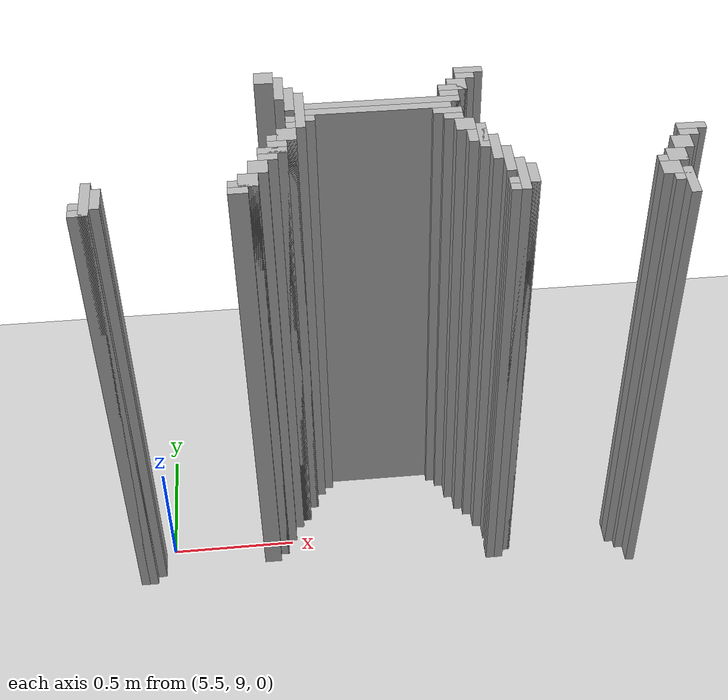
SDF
<sdf version="1.6">
 <world name="slam_world">
  <model name="ground_plane">
   <static>true</static>
   <link name="link">
    <collision name="collision">
     <geometry><plane><normal>0 0 1</normal><size>100 100</size></plane></geometry>
    </collision>
    <visual name="visual">
     <geometry><plane><normal>0 0 1</normal><size>100 100</size></plane></geometry>
     <material>
      <ambient>0.8 0.8 0.8 1</ambient>
      <diffuse>0.8 0.8 0.8 1</diffuse>
      <specular>0.8 0.8 0.8 1</specular>
     </material>
    </visual>
   </link>
  </model>
  <model name="wall_2583">
   <static>true</static>
   <pose>6.020881670533642 9.5707656612529 1.0 0 0 0</pose>
   <link name="link">
    <collision name="collision">
     <geometry><box><size>0.06960556844547564 0.06960556844547564 2.0</size></box></geometry>
    </collision>
    <visual name="visual">
     <geometry><box><size>0.06960556844547564 0.06960556844547564 2.0</size></box></geometry>
     <material><ambient>0.5 0.5 0.5 1</ambient><diffuse>0.7 0.7 0.7 1</diffuse></material>
    </visual>
   </link>
  </model>
  <model name="wall_2594">
   <static>true</static>
   <pose>6.073085846867749 9.501160092807424 1.0 0 0 0</pose>
   <link name="link">
    <collision name="collision">
     <geometry><box><size>0.03480278422273782 0.13921113689095127 2.0</size></box></geometry>
    </collision>
    <visual name="visual">
     <geometry><box><size>0.03480278422273782 0.13921113689095127 2.0</size></box></geometry>
     <material><ambient>0.5 0.5 0.5 1</ambient><diffuse>0.7 0.7 0.7 1</diffuse></material>
    </visual>
   </link>
  </model>
  <model name="wall_2595">
   <static>true</static>
   <pose>6.769141531322505 9.55336426914153 1.0 0 0 0</pose>
   <link name="link">
    <collision name="collision">
     <geometry><box><size>0.10440835266821345 0.03480278422273782 2.0</size></box></geometry>
    </collision>
    <visual name="visual">
     <geometry><box><size>0.10440835266821345 0.03480278422273782 2.0</size></box></geometry>
     <material><ambient>0.5 0.5 0.5 1</ambient><diffuse>0.7 0.7 0.7 1</diffuse></material>
    </visual>
   </link>
  </model>
  <model name="wall_2602">
   <static>true</static>
   <pose>6.751740139211137 9.518561484918793 1.0 0 0 0</pose>
   <link name="link">
    <collision name="collision">
     <geometry><box><size>0.06960556844547564 0.03480278422273782 2.0</size></box></geometry>
    </collision>
    <visual name="visual">
     <geometry><box><size>0.06960556844547564 0.03480278422273782 2.0</size></box></geometry>
     <material><ambient>0.5 0.5 0.5 1</ambient><diffuse>0.7 0.7 0.7 1</diffuse></material>
    </visual>
   </link>
  </model>
  <model name="wall_2609">
   <static>true</static>
   <pose>6.107888631090487 9.431554524361948 1.0 0 0 0</pose>
   <link name="link">
    <collision name="collision">
     <geometry><box><size>0.03480278422273782 0.13921113689095127 2.0</size></box></geometry>
    </collision>
    <visual name="visual">
     <geometry><box><size>0.03480278422273782 0.13921113689095127 2.0</size></box></geometry>
     <material><ambient>0.5 0.5 0.5 1</ambient><diffuse>0.7 0.7 0.7 1</diffuse></material>
    </visual>
   </link>
  </model>
  <model name="wall_2610">
   <static>true</static>
   <pose>6.716937354988398 9.466357308584687 1.0 0 0 0</pose>
   <link name="link">
    <collision name="collision">
     <geometry><box><size>0.06960556844547564 0.06960556844547564 2.0</size></box></geometry>
    </collision>
    <visual name="visual">
     <geometry><box><size>0.06960556844547564 0.06960556844547564 2.0</size></box></geometry>
     <material><ambient>0.5 0.5 0.5 1</ambient><diffuse>0.7 0.7 0.7 1</diffuse></material>
    </visual>
   </link>
  </model>
  <model name="wall_2620">
   <static>true</static>
   <pose>6.142691415313225 9.361948955916473 1.0 0 0 0</pose>
   <link name="link">
    <collision name="collision">
     <geometry><box><size>0.03480278422273782 0.2088167053364269 2.0</size></box></geometry>
    </collision>
    <visual name="visual">
     <geometry><box><size>0.03480278422273782 0.2088167053364269 2.0</size></box></geometry>
     <material><ambient>0.5 0.5 0.5 1</ambient><diffuse>0.7 0.7 0.7 1</diffuse></material>
    </visual>
   </link>
  </model>
  <model name="wall_2621">
   <static>true</static>
   <pose>6.69953596287703 9.448955916473318 1.0 0 0 0</pose>
   <link name="link">
    <collision name="collision">
     <geometry><box><size>0.10440835266821345 0.03480278422273782 2.0</size></box></geometry>
    </collision>
    <visual name="visual">
     <geometry><box><size>0.10440835266821345 0.03480278422273782 2.0</size></box></geometry>
     <material><ambient>0.5 0.5 0.5 1</ambient><diffuse>0.7 0.7 0.7 1</diffuse></material>
    </visual>
   </link>
  </model>
  <model name="wall_2628">
   <static>true</static>
   <pose>6.682134570765661 9.39675174013921 1.0 0 0 0</pose>
   <link name="link">
    <collision name="collision">
     <geometry><box><size>0.06960556844547564 0.06960556844547564 2.0</size></box></geometry>
    </collision>
    <visual name="visual">
     <geometry><box><size>0.06960556844547564 0.06960556844547564 2.0</size></box></geometry>
     <material><ambient>0.5 0.5 0.5 1</ambient><diffuse>0.7 0.7 0.7 1</diffuse></material>
    </visual>
   </link>
  </model>
  <model name="wall_2636">
   <static>true</static>
   <pose>6.438515081206496 9.379350348027842 1.0 0 0 0</pose>
   <link name="link">
    <collision name="collision">
     <geometry><box><size>0.5568445475638051 0.03480278422273782 2.0</size></box></geometry>
    </collision>
    <visual name="visual">
     <geometry><box><size>0.5568445475638051 0.03480278422273782 2.0</size></box></geometry>
     <material><ambient>0.5 0.5 0.5 1</ambient><diffuse>0.7 0.7 0.7 1</diffuse></material>
    </visual>
   </link>
  </model>
  <model name="wall_2647">
   <static>true</static>
   <pose>6.421113689095128 9.344547563805104 1.0 0 0 0</pose>
   <link name="link">
    <collision name="collision">
     <geometry><box><size>0.5220417633410672 0.03480278422273782 2.0</size></box></geometry>
    </collision>
    <visual name="visual">
     <geometry><box><size>0.5220417633410672 0.03480278422273782 2.0</size></box></geometry>
     <material><ambient>0.5 0.5 0.5 1</ambient><diffuse>0.7 0.7 0.7 1</diffuse></material>
    </visual>
   </link>
  </model>
  <model name="wall_2660">
   <static>true</static>
   <pose>6.142691415313225 9.309744779582367 1.0 0 0 0</pose>
   <link name="link">
    <collision name="collision">
     <geometry><box><size>0.10440835266821345 0.03480278422273782 2.0</size></box></geometry>
    </collision>
    <visual name="visual">
     <geometry><box><size>0.10440835266821345 0.03480278422273782 2.0</size></box></geometry>
     <material><ambient>0.5 0.5 0.5 1</ambient><diffuse>0.7 0.7 0.7 1</diffuse></material>
    </visual>
   </link>
  </model>
  <model name="wall_2661">
   <static>true</static>
   <pose>6.664733178654292 9.309744779582367 1.0 0 0 0</pose>
   <link name="link">
    <collision name="collision">
     <geometry><box><size>0.10440835266821345 0.03480278422273782 2.0</size></box></geometry>
    </collision>
    <visual name="visual">
     <geometry><box><size>0.10440835266821345 0.03480278422273782 2.0</size></box></geometry>
     <material><ambient>0.5 0.5 0.5 1</ambient><diffuse>0.7 0.7 0.7 1</diffuse></material>
    </visual>
   </link>
  </model>
  <model name="wall_2679">
   <static>true</static>
   <pose>6.125290023201856 9.274941995359628 1.0 0 0 0</pose>
   <link name="link">
    <collision name="collision">
     <geometry><box><size>0.06960556844547564 0.03480278422273782 2.0</size></box></geometry>
    </collision>
    <visual name="visual">
     <geometry><box><size>0.06960556844547564 0.03480278422273782 2.0</size></box></geometry>
     <material><ambient>0.5 0.5 0.5 1</ambient><diffuse>0.7 0.7 0.7 1</diffuse></material>
    </visual>
   </link>
  </model>
  <model name="wall_2680">
   <static>true</static>
   <pose>6.682134570765661 9.274941995359628 1.0 0 0 0</pose>
   <link name="link">
    <collision name="collision">
     <geometry><box><size>0.06960556844547564 0.03480278422273782 2.0</size></box></geometry>
    </collision>
    <visual name="visual">
     <geometry><box><size>0.06960556844547564 0.03480278422273782 2.0</size></box></geometry>
     <material><ambient>0.5 0.5 0.5 1</ambient><diffuse>0.7 0.7 0.7 1</diffuse></material>
    </visual>
   </link>
  </model>
  <model name="wall_2697">
   <static>true</static>
   <pose>6.090487238979118 9.222737819025522 1.0 0 0 0</pose>
   <link name="link">
    <collision name="collision">
     <geometry><box><size>0.06960556844547564 0.06960556844547564 2.0</size></box></geometry>
    </collision>
    <visual name="visual">
     <geometry><box><size>0.06960556844547564 0.06960556844547564 2.0</size></box></geometry>
     <material><ambient>0.5 0.5 0.5 1</ambient><diffuse>0.7 0.7 0.7 1</diffuse></material>
    </visual>
   </link>
  </model>
  <model name="wall_2698">
   <static>true</static>
   <pose>6.716937354988398 9.222737819025522 1.0 0 0 0</pose>
   <link name="link">
    <collision name="collision">
     <geometry><box><size>0.06960556844547564 0.06960556844547564 2.0</size></box></geometry>
    </collision>
    <visual name="visual">
     <geometry><box><size>0.06960556844547564 0.06960556844547564 2.0</size></box></geometry>
     <material><ambient>0.5 0.5 0.5 1</ambient><diffuse>0.7 0.7 0.7 1</diffuse></material>
    </visual>
   </link>
  </model>
  <model name="wall_2716">
   <static>true</static>
   <pose>6.073085846867749 9.205336426914153 1.0 0 0 0</pose>
   <link name="link">
    <collision name="collision">
     <geometry><box><size>0.10440835266821345 0.03480278422273782 2.0</size></box></geometry>
    </collision>
    <visual name="visual">
     <geometry><box><size>0.10440835266821345 0.03480278422273782 2.0</size></box></geometry>
     <material><ambient>0.5 0.5 0.5 1</ambient><diffuse>0.7 0.7 0.7 1</diffuse></material>
    </visual>
   </link>
  </model>
  <model name="wall_2717">
   <static>true</static>
   <pose>6.769141531322505 9.153132250580047 1.0 0 0 0</pose>
   <link name="link">
    <collision name="collision">
     <geometry><box><size>0.03480278422273782 0.13921113689095127 2.0</size></box></geometry>
    </collision>
    <visual name="visual">
     <geometry><box><size>0.03480278422273782 0.13921113689095127 2.0</size></box></geometry>
     <material><ambient>0.5 0.5 0.5 1</ambient><diffuse>0.7 0.7 0.7 1</diffuse></material>
    </visual>
   </link>
  </model>
  <model name="wall_2732">
   <static>true</static>
   <pose>6.05568445475638 9.153132250580047 1.0 0 0 0</pose>
   <link name="link">
    <collision name="collision">
     <geometry><box><size>0.06960556844547564 0.06960556844547564 2.0</size></box></geometry>
    </collision>
    <visual name="visual">
     <geometry><box><size>0.06960556844547564 0.06960556844547564 2.0</size></box></geometry>
     <material><ambient>0.5 0.5 0.5 1</ambient><diffuse>0.7 0.7 0.7 1</diffuse></material>
    </visual>
   </link>
  </model>
  <model name="wall_2733">
   <static>true</static>
   <pose>6.751740139211137 9.153132250580047 1.0 0 0 0</pose>
   <link name="link">
    <collision name="collision">
     <geometry><box><size>0.06960556844547564 0.06960556844547564 2.0</size></box></geometry>
    </collision>
    <visual name="visual">
     <geometry><box><size>0.06960556844547564 0.06960556844547564 2.0</size></box></geometry>
     <material><ambient>0.5 0.5 0.5 1</ambient><diffuse>0.7 0.7 0.7 1</diffuse></material>
    </visual>
   </link>
  </model>
  <model name="wall_2750">
   <static>true</static>
   <pose>6.038283062645012 9.135730858468676 1.0 0 0 0</pose>
   <link name="link">
    <collision name="collision">
     <geometry><box><size>0.10440835266821345 0.03480278422273782 2.0</size></box></geometry>
    </collision>
    <visual name="visual">
     <geometry><box><size>0.10440835266821345 0.03480278422273782 2.0</size></box></geometry>
     <material><ambient>0.5 0.5 0.5 1</ambient><diffuse>0.7 0.7 0.7 1</diffuse></material>
    </visual>
   </link>
  </model>
  <model name="wall_2751">
   <static>true</static>
   <pose>6.803944315545244 9.08352668213457 1.0 0 0 0</pose>
   <link name="link">
    <collision name="collision">
     <geometry><box><size>0.03480278422273782 0.13921113689095127 2.0</size></box></geometry>
    </collision>
    <visual name="visual">
     <geometry><box><size>0.03480278422273782 0.13921113689095127 2.0</size></box></geometry>
     <material><ambient>0.5 0.5 0.5 1</ambient><diffuse>0.7 0.7 0.7 1</diffuse></material>
    </visual>
   </link>
  </model>
  <model name="wall_2752">
   <static>true</static>
   <pose>7.5 9.135730858468676 1.0 0 0 0</pose>
   <link name="link">
    <collision name="collision">
     <geometry><box><size>0.10440835266821345 0.03480278422273782 2.0</size></box></geometry>
    </collision>
    <visual name="visual">
     <geometry><box><size>0.10440835266821345 0.03480278422273782 2.0</size></box></geometry>
     <material><ambient>0.5 0.5 0.5 1</ambient><diffuse>0.7 0.7 0.7 1</diffuse></material>
    </visual>
   </link>
  </model>
  <model name="wall_2765">
   <static>true</static>
   <pose>6.020881670533642 9.100928074245939 1.0 0 0 0</pose>
   <link name="link">
    <collision name="collision">
     <geometry><box><size>0.06960556844547564 0.03480278422273782 2.0</size></box></geometry>
    </collision>
    <visual name="visual">
     <geometry><box><size>0.06960556844547564 0.03480278422273782 2.0</size></box></geometry>
     <material><ambient>0.5 0.5 0.5 1</ambient><diffuse>0.7 0.7 0.7 1</diffuse></material>
    </visual>
   </link>
  </model>
  <model name="wall_2766">
   <static>true</static>
   <pose>7.48259860788863 9.100928074245939 1.0 0 0 0</pose>
   <link name="link">
    <collision name="collision">
     <geometry><box><size>0.06960556844547564 0.03480278422273782 2.0</size></box></geometry>
    </collision>
    <visual name="visual">
     <geometry><box><size>0.06960556844547564 0.03480278422273782 2.0</size></box></geometry>
     <material><ambient>0.5 0.5 0.5 1</ambient><diffuse>0.7 0.7 0.7 1</diffuse></material>
    </visual>
   </link>
  </model>
  <model name="wall_2779">
   <static>true</static>
   <pose>5.986078886310905 9.048723897911833 1.0 0 0 0</pose>
   <link name="link">
    <collision name="collision">
     <geometry><box><size>0.06960556844547564 0.06960556844547564 2.0</size></box></geometry>
    </collision>
    <visual name="visual">
     <geometry><box><size>0.06960556844547564 0.06960556844547564 2.0</size></box></geometry>
     <material><ambient>0.5 0.5 0.5 1</ambient><diffuse>0.7 0.7 0.7 1</diffuse></material>
    </visual>
   </link>
  </model>
  <model name="wall_2780">
   <static>true</static>
   <pose>6.838747099767981 9.013921113689095 1.0 0 0 0</pose>
   <link name="link">
    <collision name="collision">
     <geometry><box><size>0.03480278422273782 0.13921113689095127 2.0</size></box></geometry>
    </collision>
    <visual name="visual">
     <geometry><box><size>0.03480278422273782 0.13921113689095127 2.0</size></box></geometry>
     <material><ambient>0.5 0.5 0.5 1</ambient><diffuse>0.7 0.7 0.7 1</diffuse></material>
    </visual>
   </link>
  </model>
  <model name="wall_2781">
   <static>true</static>
   <pose>7.447795823665893 9.048723897911833 1.0 0 0 0</pose>
   <link name="link">
    <collision name="collision">
     <geometry><box><size>0.06960556844547564 0.06960556844547564 2.0</size></box></geometry>
    </collision>
    <visual name="visual">
     <geometry><box><size>0.06960556844547564 0.06960556844547564 2.0</size></box></geometry>
     <material><ambient>0.5 0.5 0.5 1</ambient><diffuse>0.7 0.7 0.7 1</diffuse></material>
    </visual>
   </link>
  </model>
  <model name="wall_2797">
   <static>true</static>
   <pose>5.41183294663573 8.92691415313225 1.0 0 0 0</pose>
   <link name="link">
    <collision name="collision">
     <geometry><box><size>0.03480278422273782 0.17401392111368907 2.0</size></box></geometry>
    </collision>
    <visual name="visual">
     <geometry><box><size>0.03480278422273782 0.17401392111368907 2.0</size></box></geometry>
     <material><ambient>0.5 0.5 0.5 1</ambient><diffuse>0.7 0.7 0.7 1</diffuse></material>
    </visual>
   </link>
  </model>
  <model name="wall_2798">
   <static>true</static>
   <pose>5.951276102088166 8.979118329466356 1.0 0 0 0</pose>
   <link name="link">
    <collision name="collision">
     <geometry><box><size>0.06960556844547564 0.06960556844547564 2.0</size></box></geometry>
    </collision>
    <visual name="visual">
     <geometry><box><size>0.06960556844547564 0.06960556844547564 2.0</size></box></geometry>
     <material><ambient>0.5 0.5 0.5 1</ambient><diffuse>0.7 0.7 0.7 1</diffuse></material>
    </visual>
   </link>
  </model>
  <model name="wall_2799">
   <static>true</static>
   <pose>6.8735498839907185 8.92691415313225 1.0 0 0 0</pose>
   <link name="link">
    <collision name="collision">
     <geometry><box><size>0.03480278422273782 0.17401392111368907 2.0</size></box></geometry>
    </collision>
    <visual name="visual">
     <geometry><box><size>0.03480278422273782 0.17401392111368907 2.0</size></box></geometry>
     <material><ambient>0.5 0.5 0.5 1</ambient><diffuse>0.7 0.7 0.7 1</diffuse></material>
    </visual>
   </link>
  </model>
  <model name="wall_2800">
   <static>true</static>
   <pose>7.412993039443156 8.979118329466356 1.0 0 0 0</pose>
   <link name="link">
    <collision name="collision">
     <geometry><box><size>0.06960556844547564 0.06960556844547564 2.0</size></box></geometry>
    </collision>
    <visual name="visual">
     <geometry><box><size>0.06960556844547564 0.06960556844547564 2.0</size></box></geometry>
     <material><ambient>0.5 0.5 0.5 1</ambient><diffuse>0.7 0.7 0.7 1</diffuse></material>
    </visual>
   </link>
  </model>
  <model name="wall_2815">
   <static>true</static>
   <pose>5.4466357308584685 8.92691415313225 1.0 0 0 0</pose>
   <link name="link">
    <collision name="collision">
     <geometry><box><size>0.03480278422273782 0.10440835266821345 2.0</size></box></geometry>
    </collision>
    <visual name="visual">
     <geometry><box><size>0.03480278422273782 0.10440835266821345 2.0</size></box></geometry>
     <material><ambient>0.5 0.5 0.5 1</ambient><diffuse>0.7 0.7 0.7 1</diffuse></material>
    </visual>
   </link>
  </model>
  <model name="wall_2816">
   <static>true</static>
   <pose>5.933874709976798 8.961716937354987 1.0 0 0 0</pose>
   <link name="link">
    <collision name="collision">
     <geometry><box><size>0.10440835266821345 0.03480278422273782 2.0</size></box></geometry>
    </collision>
    <visual name="visual">
     <geometry><box><size>0.10440835266821345 0.03480278422273782 2.0</size></box></geometry>
     <material><ambient>0.5 0.5 0.5 1</ambient><diffuse>0.7 0.7 0.7 1</diffuse></material>
    </visual>
   </link>
  </model>
  <model name="wall_2817">
   <static>true</static>
   <pose>6.908352668213457 8.92691415313225 1.0 0 0 0</pose>
   <link name="link">
    <collision name="collision">
     <geometry><box><size>0.03480278422273782 0.10440835266821345 2.0</size></box></geometry>
    </collision>
    <visual name="visual">
     <geometry><box><size>0.03480278422273782 0.10440835266821345 2.0</size></box></geometry>
     <material><ambient>0.5 0.5 0.5 1</ambient><diffuse>0.7 0.7 0.7 1</diffuse></material>
    </visual>
   </link>
  </model>
  <model name="wall_2818">
   <static>true</static>
   <pose>7.395591647331786 8.961716937354987 1.0 0 0 0</pose>
   <link name="link">
    <collision name="collision">
     <geometry><box><size>0.10440835266821345 0.03480278422273782 2.0</size></box></geometry>
    </collision>
    <visual name="visual">
     <geometry><box><size>0.10440835266821345 0.03480278422273782 2.0</size></box></geometry>
     <material><ambient>0.5 0.5 0.5 1</ambient><diffuse>0.7 0.7 0.7 1</diffuse></material>
    </visual>
   </link>
  </model>
  <model name="wall_2830">
   <static>true</static>
   <pose>5.916473317865429 8.92691415313225 1.0 0 0 0</pose>
   <link name="link">
    <collision name="collision">
     <geometry><box><size>0.06960556844547564 0.03480278422273782 2.0</size></box></geometry>
    </collision>
    <visual name="visual">
     <geometry><box><size>0.06960556844547564 0.03480278422273782 2.0</size></box></geometry>
     <material><ambient>0.5 0.5 0.5 1</ambient><diffuse>0.7 0.7 0.7 1</diffuse></material>
    </visual>
   </link>
  </model>
  <model name="wall_2831">
   <static>true</static>
   <pose>7.378190255220417 8.909512761020881 1.0 0 0 0</pose>
   <link name="link">
    <collision name="collision">
     <geometry><box><size>0.06960556844547564 0.06960556844547564 2.0</size></box></geometry>
    </collision>
    <visual name="visual">
     <geometry><box><size>0.06960556844547564 0.06960556844547564 2.0</size></box></geometry>
     <material><ambient>0.5 0.5 0.5 1</ambient><diffuse>0.7 0.7 0.7 1</diffuse></material>
    </visual>
   </link>
  </model>
  <model name="wall_2844">
   <static>true</static>
   <pose>5.41183294663573 8.892111368909513 1.0 0 0 0</pose>
   <link name="link">
    <collision name="collision">
     <geometry><box><size>0.10440835266821345 0.03480278422273782 2.0</size></box></geometry>
    </collision>
    <visual name="visual">
     <geometry><box><size>0.10440835266821345 0.03480278422273782 2.0</size></box></geometry>
     <material><ambient>0.5 0.5 0.5 1</ambient><diffuse>0.7 0.7 0.7 1</diffuse></material>
    </visual>
   </link>
  </model>
  <model name="wall_2845">
   <static>true</static>
   <pose>6.8735498839907185 8.892111368909513 1.0 0 0 0</pose>
   <link name="link">
    <collision name="collision">
     <geometry><box><size>0.10440835266821345 0.03480278422273782 2.0</size></box></geometry>
    </collision>
    <visual name="visual">
     <geometry><box><size>0.10440835266821345 0.03480278422273782 2.0</size></box></geometry>
     <material><ambient>0.5 0.5 0.5 1</ambient><diffuse>0.7 0.7 0.7 1</diffuse></material>
    </visual>
   </link>
  </model>
  <model name="wall_2846">
   <static>true</static>
   <pose>7.430394431554524 8.839907192575406 1.0 0 0 0</pose>
   <link name="link">
    <collision name="collision">
     <geometry><box><size>0.03480278422273782 0.13921113689095127 2.0</size></box></geometry>
    </collision>
    <visual name="visual">
     <geometry><box><size>0.03480278422273782 0.13921113689095127 2.0</size></box></geometry>
     <material><ambient>0.5 0.5 0.5 1</ambient><diffuse>0.7 0.7 0.7 1</diffuse></material>
    </visual>
   </link>
  </model>
  <model name="wall_2859">
   <static>true</static>
   <pose>5.3944315545243615 8.857308584686775 1.0 0 0 0</pose>
   <link name="link">
    <collision name="collision">
     <geometry><box><size>0.06960556844547564 0.03480278422273782 2.0</size></box></geometry>
    </collision>
    <visual name="visual">
     <geometry><box><size>0.06960556844547564 0.03480278422273782 2.0</size></box></geometry>
     <material><ambient>0.5 0.5 0.5 1</ambient><diffuse>0.7 0.7 0.7 1</diffuse></material>
    </visual>
   </link>
  </model>
  <model name="wall_2860">
   <static>true</static>
   <pose>6.85614849187935 8.857308584686775 1.0 0 0 0</pose>
   <link name="link">
    <collision name="collision">
     <geometry><box><size>0.06960556844547564 0.03480278422273782 2.0</size></box></geometry>
    </collision>
    <visual name="visual">
     <geometry><box><size>0.06960556844547564 0.03480278422273782 2.0</size></box></geometry>
     <material><ambient>0.5 0.5 0.5 1</ambient><diffuse>0.7 0.7 0.7 1</diffuse></material>
    </visual>
   </link>
  </model>
  <model name="wall_2861">
   <static>true</static>
   <pose>7.412993039443156 8.857308584686775 1.0 0 0 0</pose>
   <link name="link">
    <collision name="collision">
     <geometry><box><size>0.06960556844547564 0.03480278422273782 2.0</size></box></geometry>
    </collision>
    <visual name="visual">
     <geometry><box><size>0.06960556844547564 0.03480278422273782 2.0</size></box></geometry>
     <material><ambient>0.5 0.5 0.5 1</ambient><diffuse>0.7 0.7 0.7 1</diffuse></material>
    </visual>
   </link>
  </model>
 </world>
</sdf>
